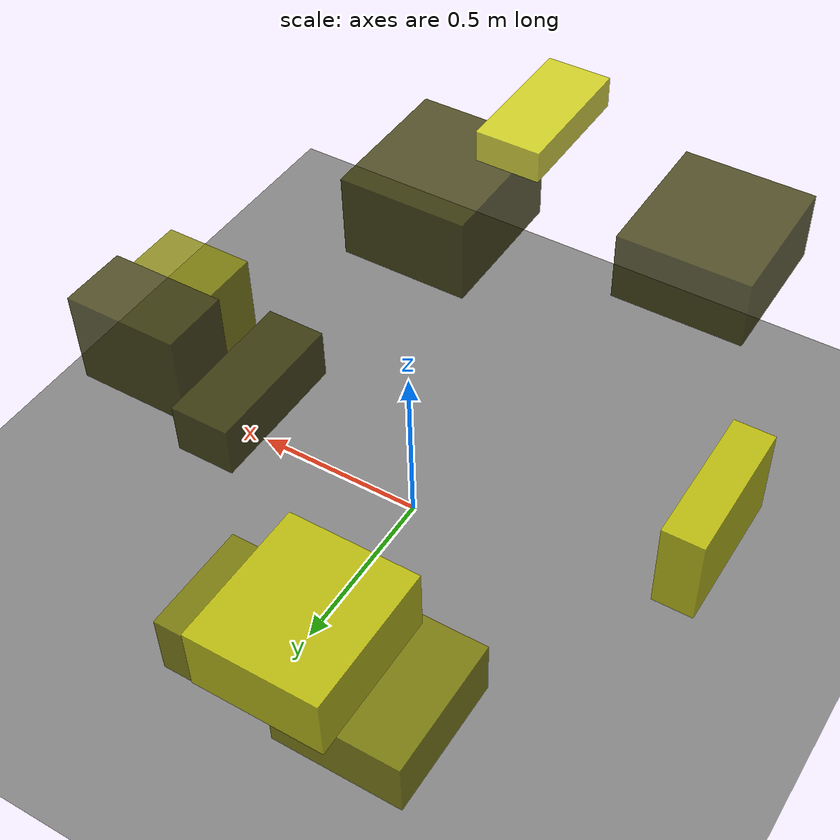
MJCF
<?xml version="1.0"?>
<mujoco model="obstacle_scene">
  <compiler angle="radian" coordinate="local"/>
  <option timestep="0.001" gravity="0 0 -9.81"/>

  <asset>
    <material name="obstacle_mat" rgba="0.8 0.8 0.0 0.8"/>
    <material name="ground_mat" rgba="0.5 0.5 0.5 1"/>
  </asset>

  <worldbody>
    <!-- Ground plane -->
    <geom name="ground" type="plane" size="3 3 0.1" material="ground_mat"/>

    <!-- Obstacles -->
    <body name="obstacle_0" pos="-0.518785 -0.657695 0.698057">
      <geom name="obs_0" type="box" size="0.183675 0.203502 0.099274" rgba="0.2 0.2 0.0 0.8"/>
    </body>
    <body name="obstacle_1" pos="0.083622 0.615431 0.111431">
      <geom name="obs_1" type="box" size="0.169568 0.160014 0.095892" rgba="0.5 0.5 0.0 0.8"/>
    </body>
    <body name="obstacle_2" pos="-0.113536 -0.459899 1.066916">
      <geom name="obs_2" type="box" size="0.084635 0.179013 0.041246" rgba="0.8 0.8 0.0 0.8"/>
    </body>
    <body name="obstacle_3" pos="-0.088051 0.681463 1.112419">
      <geom name="obs_3" type="box" size="0.063714 0.157993 0.055941" rgba="0.2 0.2 0.0 0.8"/>
    </body>
    <body name="obstacle_4" pos="-0.338276 0.669533 0.223323">
      <geom name="obs_4" type="box" size="0.181846 0.190994 0.084375" rgba="0.5 0.5 0.0 0.8"/>
    </body>
    <body name="obstacle_5" pos="-0.169125 0.705461 0.397285">
      <geom name="obs_5" type="box" size="0.182751 0.204682 0.093429" rgba="0.8 0.8 0.0 0.8"/>
    </body>
    <body name="obstacle_6" pos="0.357221 0.497132 0.882606">
      <geom name="obs_6" type="box" size="0.143473 0.084029 0.119568" rgba="0.2 0.2 0.0 0.8"/>
    </body>
    <body name="obstacle_7" pos="0.715502 -0.021788 0.421522">
      <geom name="obs_7" type="box" size="0.130366 0.092391 0.134338" rgba="0.5 0.5 0.0 0.8"/>
    </body>
    <body name="obstacle_8" pos="-0.837137 -0.041323 0.438042">
      <geom name="obs_8" type="box" size="0.055687 0.201026 0.129765" rgba="0.8 0.8 0.0 0.8"/>
    </body>
    <body name="obstacle_9" pos="0.150166 -0.420296 0.748035">
      <geom name="obs_9" type="box" size="0.179645 0.203450 0.119106" rgba="0.2 0.2 0.0 0.8"/>
    </body>
  </worldbody>
</mujoco>
